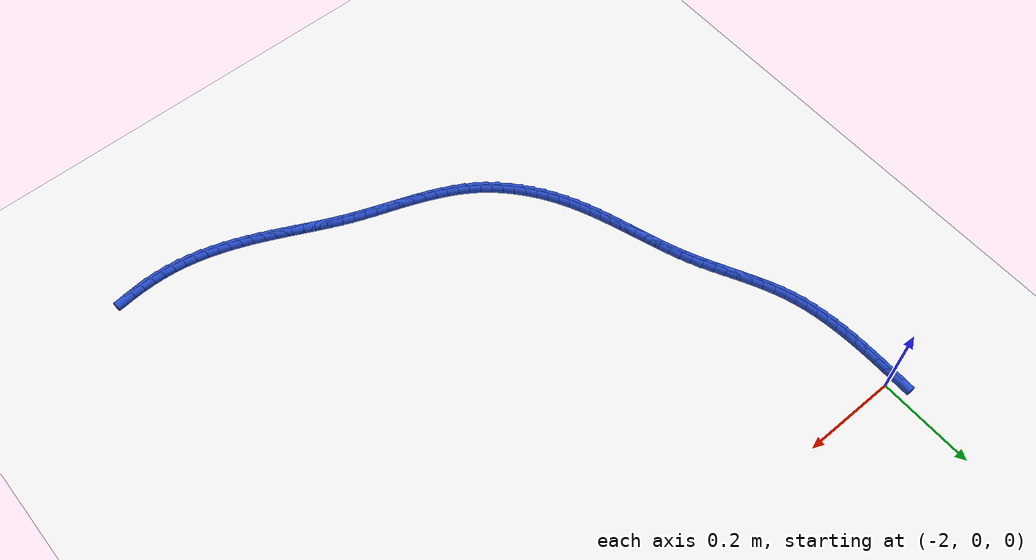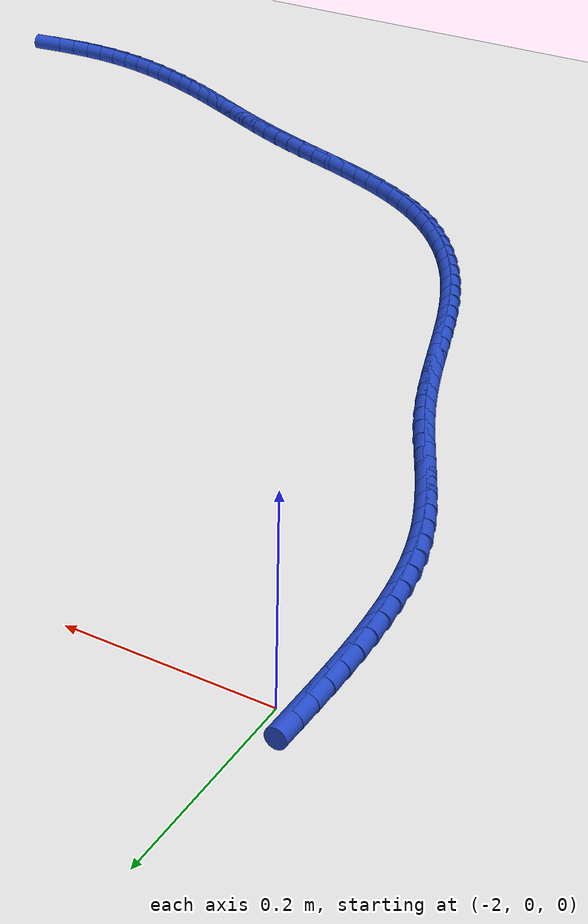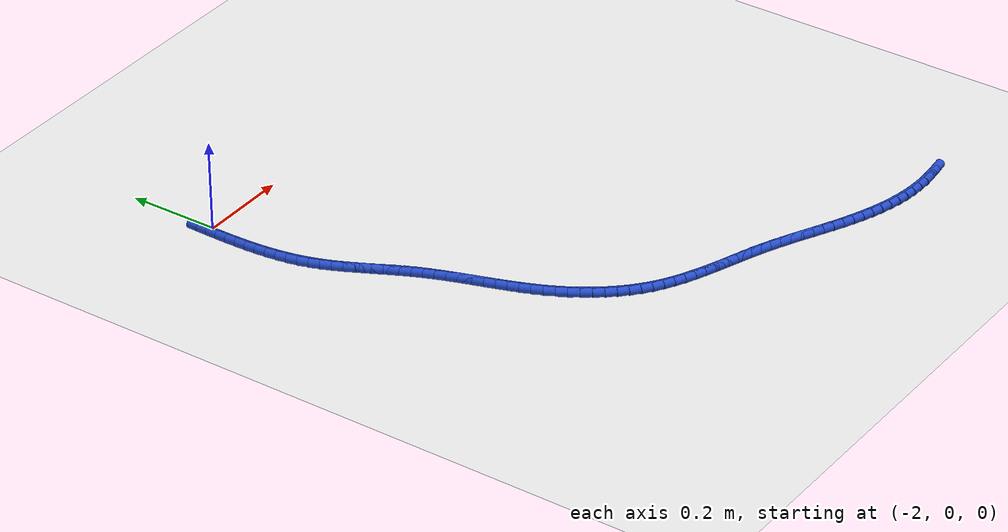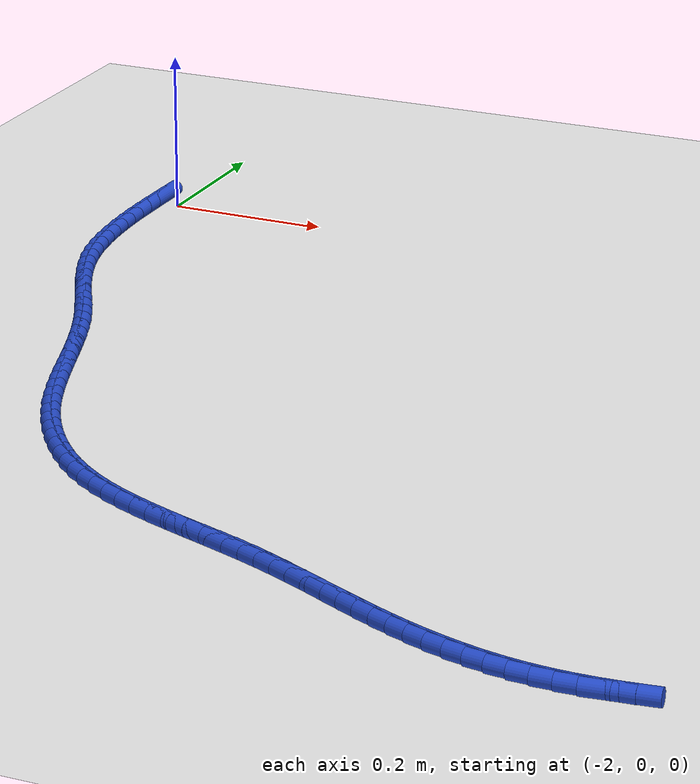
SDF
<sdf version="1.6">
 <world name="default">
  <model name="ground_plane">
   <static>1</static>
   <link name="link">
    <collision name="collision">
     <geometry><plane><normal>0 0 1</normal><size>100 100</size></plane></geometry>
     <surface><friction><ode><mu>100</mu><mu2>50</mu2></ode></friction></surface>
    </collision>
    <visual name="visual">
     <cast_shadows>0</cast_shadows>
     <geometry><plane><normal>0 0 1</normal><size>100 100</size></plane></geometry>
     <material>
      <script><uri>file://media/materials/scripts/gazebo.material</uri><name>Gazebo/WhiteGlow</name></script>
     </material>
    </visual>
   </link>
  </model>
  <model name="line">
   <link name="link_141">
    <pose>-2.023057227948224 0.0009073355299629441 0.01 0 1.57 1.5597617232590624</pose>
    <collision name="collision">
     <geometry><cylinder><radius>0.01</radius><length>0.08</length></cylinder></geometry>
    </collision>
    <visual name="visual">
     <material>
      <script><name>Gazebo/Blue</name><uri>file://media/materials/scripts/gazebo.material</uri></script>
     </material>
     <geometry><cylinder><radius>0.01</radius><length>0.08</length></cylinder></geometry>
    </visual>
   </link>
   <link name="link_142">
    <pose>-2.0233220026584045 -0.023086636042471863 0.01 0 1.57 1.5689341374883188</pose>
    <collision name="collision">
     <geometry><cylinder><radius>0.01</radius><length>0.08</length></cylinder></geometry>
    </collision>
    <visual name="visual">
     <material>
      <script><name>Gazebo/Blue</name><uri>file://media/materials/scripts/gazebo.material</uri></script>
     </material>
     <geometry><cylinder><radius>0.01</radius><length>0.08</length></cylinder></geometry>
    </visual>
   </link>
   <link name="link_143">
    <pose>-2.023366839464035 -0.04716407738772726 0.01 0 1.57 -1.5587827973784363</pose>
    <collision name="collision">
     <geometry><cylinder><radius>0.01</radius><length>0.08</length></cylinder></geometry>
    </collision>
    <visual name="visual">
     <material>
      <script><name>Gazebo/Blue</name><uri>file://media/materials/scripts/gazebo.material</uri></script>
     </material>
     <geometry><cylinder><radius>0.01</radius><length>0.08</length></cylinder></geometry>
    </visual>
   </link>
   <link name="link_144">
    <pose>-2.023077206975355 -0.07127177669743998 0.01 0 1.57 -1.540137844850305</pose>
    <collision name="collision">
     <geometry><cylinder><radius>0.01</radius><length>0.08</length></cylinder></geometry>
    </collision>
    <visual name="visual">
     <material>
      <script><name>Gazebo/Blue</name><uri>file://media/materials/scripts/gazebo.material</uri></script>
     </material>
     <geometry><cylinder><radius>0.01</radius><length>0.08</length></cylinder></geometry>
    </visual>
   </link>
   <link name="link_145">
    <pose>-2.0223385738026076 -0.09535652216324693 0.01 0 1.57 -1.5166119209188074</pose>
    <collision name="collision">
     <geometry><cylinder><radius>0.01</radius><length>0.08</length></cylinder></geometry>
    </collision>
    <visual name="visual">
     <material>
      <script><name>Gazebo/Blue</name><uri>file://media/materials/scripts/gazebo.material</uri></script>
     </material>
     <geometry><cylinder><radius>0.01</radius><length>0.08</length></cylinder></geometry>
    </visual>
   </link>
   <link name="link_146">
    <pose>-2.021036408556032 -0.11936510197678567 0.01 0 1.57 -1.4880587186526688</pose>
    <collision name="collision">
     <geometry><cylinder><radius>0.01</radius><length>0.08</length></cylinder></geometry>
    </collision>
    <visual name="visual">
     <material>
      <script><name>Gazebo/Blue</name><uri>file://media/materials/scripts/gazebo.material</uri></script>
     </material>
     <geometry><cylinder><radius>0.01</radius><length>0.08</length></cylinder></geometry>
    </visual>
   </link>
   <link name="link_147">
    <pose>-2.0190561798458715 -0.14324430432969154 0.01 0 1.57 -1.4543125406291841</pose>
    <collision name="collision">
     <geometry><cylinder><radius>0.01</radius><length>0.08</length></cylinder></geometry>
    </collision>
    <visual name="visual">
     <material>
      <script><name>Gazebo/Blue</name><uri>file://media/materials/scripts/gazebo.material</uri></script>
     </material>
     <geometry><cylinder><radius>0.01</radius><length>0.08</length></cylinder></geometry>
    </visual>
   </link>
   <link name="link_148">
    <pose>-2.016283356282366 -0.1669409174136021 0.01 0 1.57 -1.415208885727363</pose>
    <collision name="collision">
     <geometry><cylinder><radius>0.01</radius><length>0.08</length></cylinder></geometry>
    </collision>
    <visual name="visual">
     <material>
      <script><name>Gazebo/Blue</name><uri>file://media/materials/scripts/gazebo.material</uri></script>
     </material>
     <geometry><cylinder><radius>0.01</radius><length>0.08</length></cylinder></geometry>
    </visual>
   </link>
   <link name="link_149">
    <pose>-2.0126034064757556 -0.19040172942015418 0.01 0 1.57 -1.370611819343016</pose>
    <collision name="collision">
     <geometry><cylinder><radius>0.01</radius><length>0.08</length></cylinder></geometry>
    </collision>
    <visual name="visual">
     <material>
      <script><name>Gazebo/Blue</name><uri>file://media/materials/scripts/gazebo.material</uri></script>
     </material>
     <geometry><cylinder><radius>0.01</radius><length>0.08</length></cylinder></geometry>
    </visual>
   </link>
   <link name="link_150">
    <pose>-2.007901799036283 -0.2135735285409846 0.01 0 1.57 -1.3204489174814513</pose>
    <collision name="collision">
     <geometry><cylinder><radius>0.01</radius><length>0.08</length></cylinder></geometry>
    </collision>
    <visual name="visual">
     <material>
      <script><name>Gazebo/Blue</name><uri>file://media/materials/scripts/gazebo.material</uri></script>
     </material>
     <geometry><cylinder><radius>0.01</radius><length>0.08</length></cylinder></geometry>
    </visual>
   </link>
   <link name="link_151">
    <pose>-2.0020640025741896 -0.23640310296773026 0.01 0 1.57 -1.2648346561743053</pose>
    <collision name="collision">
     <geometry><cylinder><radius>0.01</radius><length>0.08</length></cylinder></geometry>
    </collision>
    <visual name="visual">
     <material>
      <script><name>Gazebo/Blue</name><uri>file://media/materials/scripts/gazebo.material</uri></script>
     </material>
     <geometry><cylinder><radius>0.01</radius><length>0.08</length></cylinder></geometry>
    </visual>
   </link>
   <link name="link_152">
    <pose>-1.9949772776243744 -0.2588379295110594 0.01 0 1.57 -1.2096856034503434</pose>
    <collision name="collision">
     <geometry><cylinder><radius>0.01</radius><length>0.08</length></cylinder></geometry>
    </collision>
    <visual name="visual">
     <material>
      <script><name>Gazebo/Blue</name><uri>file://media/materials/scripts/gazebo.material</uri></script>
     </material>
     <geometry><cylinder><radius>0.01</radius><length>0.08</length></cylinder></geometry>
    </visual>
   </link>
   <link name="link_153">
    <pose>-1.9866549138830387 -0.2808739167494265 0.01 0 1.57 -1.1646392743769012</pose>
    <collision name="collision">
     <geometry><cylinder><radius>0.01</radius><length>0.08</length></cylinder></geometry>
    </collision>
    <visual name="visual">
     <material>
      <script><name>Gazebo/Blue</name><uri>file://media/materials/scripts/gazebo.material</uri></script>
     </material>
     <geometry><cylinder><radius>0.01</radius><length>0.08</length></cylinder></geometry>
    </visual>
   </link>
   <link name="link_154">
    <pose>-1.9773170080211586 -0.302586447148723 0.01 0 1.57 -1.1305817391148092</pose>
    <collision name="collision">
     <geometry><cylinder><radius>0.01</radius><length>0.08</length></cylinder></geometry>
    </collision>
    <visual name="visual">
     <material>
      <script><name>Gazebo/Blue</name><uri>file://media/materials/scripts/gazebo.material</uri></script>
     </material>
     <geometry><cylinder><radius>0.01</radius><length>0.08</length></cylinder></geometry>
    </visual>
   </link>
   <link name="link_155">
    <pose>-1.9672028570755478 -0.3240582816866878 0.01 0 1.57 -1.107368348257664</pose>
    <collision name="collision">
     <geometry><cylinder><radius>0.01</radius><length>0.08</length></cylinder></geometry>
    </collision>
    <visual name="visual">
     <material>
      <script><name>Gazebo/Blue</name><uri>file://media/materials/scripts/gazebo.material</uri></script>
     </material>
     <geometry><cylinder><radius>0.01</radius><length>0.08</length></cylinder></geometry>
    </visual>
   </link>
   <link name="link_156">
    <pose>-1.956551758083023 -0.3453721813410582 0.01 0 1.57 -1.094818796255862</pose>
    <collision name="collision">
     <geometry><cylinder><radius>0.01</radius><length>0.08</length></cylinder></geometry>
    </collision>
    <visual name="visual">
     <material>
      <script><name>Gazebo/Blue</name><uri>file://media/materials/scripts/gazebo.material</uri></script>
     </material>
     <geometry><cylinder><radius>0.01</radius><length>0.08</length></cylinder></geometry>
    </visual>
   </link>
   <link name="link_157">
    <pose>-1.9456030080803994 -0.36661090708957356 0.01 0 1.57 -1.0927964507718904</pose>
    <collision name="collision">
     <geometry><cylinder><radius>0.01</radius><length>0.08</length></cylinder></geometry>
    </collision>
    <visual name="visual">
     <material>
      <script><name>Gazebo/Blue</name><uri>file://media/materials/scripts/gazebo.material</uri></script>
     </material>
     <geometry><cylinder><radius>0.01</radius><length>0.08</length></cylinder></geometry>
    </visual>
   </link>
   <link name="link_158">
    <pose>-1.9345959041044922 -0.3878572199099724 0.01 0 1.57 -1.1012485244442995</pose>
    <collision name="collision">
     <geometry><cylinder><radius>0.01</radius><length>0.08</length></cylinder></geometry>
    </collision>
    <visual name="visual">
     <material>
      <script><name>Gazebo/Blue</name><uri>file://media/materials/scripts/gazebo.material</uri></script>
     </material>
     <geometry><cylinder><radius>0.01</radius><length>0.08</length></cylinder></geometry>
    </visual>
   </link>
   <link name="link_159">
    <pose>-1.9237697431921164 -0.40919388077999325 0.01 0 1.57 -1.1202115639963244</pose>
    <collision name="collision">
     <geometry><cylinder><radius>0.01</radius><length>0.08</length></cylinder></geometry>
    </collision>
    <visual name="visual">
     <material>
      <script><name>Gazebo/Blue</name><uri>file://media/materials/scripts/gazebo.material</uri></script>
     </material>
     <geometry><cylinder><radius>0.01</radius><length>0.08</length></cylinder></geometry>
    </visual>
   </link>
   <link name="link_160">
    <pose>-1.9133638223800882 -0.4307036506773747 0.01 0 1.57 -1.1496451820584055</pose>
    <collision name="collision">
     <geometry><cylinder><radius>0.01</radius><length>0.08</length></cylinder></geometry>
    </collision>
    <visual name="visual">
     <material>
      <script><name>Gazebo/Blue</name><uri>file://media/materials/scripts/gazebo.material</uri></script>
     </material>
     <geometry><cylinder><radius>0.01</radius><length>0.08</length></cylinder></geometry>
    </visual>
   </link>
   <link name="link_161">
    <pose>-1.9036143242709638 -0.45246815939183466 0.01 0 1.57 -1.182765970545123</pose>
    <collision name="collision">
     <geometry><cylinder><radius>0.01</radius><length>0.08</length></cylinder></geometry>
    </collision>
    <visual name="visual">
     <material>
      <script><name>Gazebo/Blue</name><uri>file://media/materials/scripts/gazebo.material</uri></script>
     </material>
     <geometry><cylinder><radius>0.01</radius><length>0.08</length></cylinder></geometry>
    </visual>
   </link>
   <link name="link_162">
    <pose>-1.8946033677618028 -0.47451307951393557 0.01 0 1.57 -1.2096464520930241</pose>
    <collision name="collision">
     <geometry><cylinder><radius>0.01</radius><length>0.08</length></cylinder></geometry>
    </collision>
    <visual name="visual">
     <material>
      <script><name>Gazebo/Blue</name><uri>file://media/materials/scripts/gazebo.material</uri></script>
     </material>
     <geometry><cylinder><radius>0.01</radius><length>0.08</length></cylinder></geometry>
    </visual>
   </link>
   <link name="link_163">
    <pose>-1.8861914371884818 -0.496783584147096 0.01 0 1.57 -1.2294690854985713</pose>
    <collision name="collision">
     <geometry><cylinder><radius>0.01</radius><length>0.08</length></cylinder></geometry>
    </collision>
    <visual name="visual">
     <material>
      <script><name>Gazebo/Blue</name><uri>file://media/materials/scripts/gazebo.material</uri></script>
     </material>
     <geometry><cylinder><radius>0.01</radius><length>0.08</length></cylinder></geometry>
    </visual>
   </link>
   <link name="link_164">
    <pose>-1.8782218255041196 -0.5192186023437725 0.01 0 1.57 -1.2422259189413765</pose>
    <collision name="collision">
     <geometry><cylinder><radius>0.01</radius><length>0.08</length></cylinder></geometry>
    </collision>
    <visual name="visual">
     <material>
      <script><name>Gazebo/Blue</name><uri>file://media/materials/scripts/gazebo.material</uri></script>
     </material>
     <geometry><cylinder><radius>0.01</radius><length>0.08</length></cylinder></geometry>
    </visual>
   </link>
   <link name="link_165">
    <pose>-1.8705378256618372 -0.5417570631564199 0.01 0 1.57 -1.2479241877370781</pose>
    <collision name="collision">
     <geometry><cylinder><radius>0.01</radius><length>0.08</length></cylinder></geometry>
    </collision>
    <visual name="visual">
     <material>
      <script><name>Gazebo/Blue</name><uri>file://media/materials/scripts/gazebo.material</uri></script>
     </material>
     <geometry><cylinder><radius>0.01</radius><length>0.08</length></cylinder></geometry>
    </visual>
   </link>
   <link name="link_166">
    <pose>-1.8629827306147546 -0.5643378956374947 0.01 0 1.57 -1.2465672277594648</pose>
    <collision name="collision">
     <geometry><cylinder><radius>0.01</radius><length>0.08</length></cylinder></geometry>
    </collision>
    <visual name="visual">
     <material>
      <script><name>Gazebo/Blue</name><uri>file://media/materials/scripts/gazebo.material</uri></script>
     </material>
     <geometry><cylinder><radius>0.01</radius><length>0.08</length></cylinder></geometry>
    </visual>
   </link>
   <link name="link_167">
    <pose>-1.8553998333159918 -0.5869000288394531 0.01 0 1.57 -1.2381459539160442</pose>
    <collision name="collision">
     <geometry><cylinder><radius>0.01</radius><length>0.08</length></cylinder></geometry>
    </collision>
    <visual name="visual">
     <material>
      <script><name>Gazebo/Blue</name><uri>file://media/materials/scripts/gazebo.material</uri></script>
     </material>
     <geometry><cylinder><radius>0.01</radius><length>0.08</length></cylinder></geometry>
    </visual>
   </link>
   <link name="link_168">
    <pose>-1.8476324267186683 -0.6093823918147508 0.01 0 1.57 -1.2226408523611212</pose>
    <collision name="collision">
     <geometry><cylinder><radius>0.01</radius><length>0.08</length></cylinder></geometry>
    </collision>
    <visual name="visual">
     <material>
      <script><name>Gazebo/Blue</name><uri>file://media/materials/scripts/gazebo.material</uri></script>
     </material>
     <geometry><cylinder><radius>0.01</radius><length>0.08</length></cylinder></geometry>
    </visual>
   </link>
   <link name="link_169">
    <pose>-1.839523803775905 -0.6317239136158441 0.01 0 1.57 -1.20003459129821</pose>
    <collision name="collision">
     <geometry><cylinder><radius>0.01</radius><length>0.08</length></cylinder></geometry>
    </collision>
    <visual name="visual">
     <material>
      <script><name>Gazebo/Blue</name><uri>file://media/materials/scripts/gazebo.material</uri></script>
     </material>
     <geometry><cylinder><radius>0.01</radius><length>0.08</length></cylinder></geometry>
    </visual>
   </link>
   <link name="link_170">
    <pose>-1.830917257440822 -0.6538635232951893 0.01 0 1.57 -1.1703354355660025</pose>
    <collision name="collision">
     <geometry><cylinder><radius>0.01</radius><length>0.08</length></cylinder></geometry>
    </collision>
    <visual name="visual">
     <material>
      <script><name>Gazebo/Blue</name><uri>file://media/materials/scripts/gazebo.material</uri></script>
     </material>
     <geometry><cylinder><radius>0.01</radius><length>0.08</length></cylinder></geometry>
    </visual>
   </link>
   <link name="link_171">
    <pose>-1.821656080666539 -0.6757401499052414 0.01 0 1.57 -1.1336112496209738</pose>
    <collision name="collision">
     <geometry><cylinder><radius>0.01</radius><length>0.08</length></cylinder></geometry>
    </collision>
    <visual name="visual">
     <material>
      <script><name>Gazebo/Blue</name><uri>file://media/materials/scripts/gazebo.material</uri></script>
     </material>
     <geometry><cylinder><radius>0.01</radius><length>0.08</length></cylinder></geometry>
    </visual>
   </link>
   <link name="link_172">
    <pose>-1.811583566406176 -0.6972927224984572 0.01 0 1.57 -1.0900326210460178</pose>
    <collision name="collision">
     <geometry><cylinder><radius>0.01</radius><length>0.08</length></cylinder></geometry>
    </collision>
    <visual name="visual">
     <material>
      <script><name>Gazebo/Blue</name><uri>file://media/materials/scripts/gazebo.material</uri></script>
     </material>
     <geometry><cylinder><radius>0.01</radius><length>0.08</length></cylinder></geometry>
    </visual>
   </link>
   <link name="link_173">
    <pose>-1.8005430084495002 -0.7184601697778187 0.01 0 1.57 -1.0408392244365492</pose>
    <collision name="collision">
     <geometry><cylinder><radius>0.01</radius><length>0.08</length></cylinder></geometry>
    </collision>
    <visual name="visual">
     <material>
      <script><name>Gazebo/Blue</name><uri>file://media/materials/scripts/gazebo.material</uri></script>
     </material>
     <geometry><cylinder><radius>0.01</radius><length>0.08</length></cylinder></geometry>
    </visual>
   </link>
   <link name="link_174">
    <pose>-1.7884115536418976 -0.7391672797446746 0.01 0 1.57 -0.9894226303605738</pose>
    <collision name="collision">
     <geometry><cylinder><radius>0.01</radius><length>0.08</length></cylinder></geometry>
    </collision>
    <visual name="visual">
     <material>
      <script><name>Gazebo/Blue</name><uri>file://media/materials/scripts/gazebo.material</uri></script>
     </material>
     <geometry><cylinder><radius>0.01</radius><length>0.08</length></cylinder></geometry>
    </visual>
   </link>
   <link name="link_175">
    <pose>-1.7751901172084268 -0.7592871413233979 0.01 0 1.57 -0.9360373159760991</pose>
    <collision name="collision">
     <geometry><cylinder><radius>0.01</radius><length>0.08</length></cylinder></geometry>
    </collision>
    <visual name="visual">
     <material>
      <script><name>Gazebo/Blue</name><uri>file://media/materials/scripts/gazebo.material</uri></script>
     </material>
     <geometry><cylinder><radius>0.01</radius><length>0.08</length></cylinder></geometry>
    </visual>
   </link>
   <link name="link_176">
    <pose>-1.7609078918911603 -0.7786810316853696 0.01 0 1.57 -0.8801223480907423</pose>
    <collision name="collision">
     <geometry><cylinder><radius>0.01</radius><length>0.08</length></cylinder></geometry>
    </collision>
    <visual name="visual">
     <material>
      <script><name>Gazebo/Blue</name><uri>file://media/materials/scripts/gazebo.material</uri></script>
     </material>
     <geometry><cylinder><radius>0.01</radius><length>0.08</length></cylinder></geometry>
    </visual>
   </link>
   <link name="link_177">
    <pose>-1.7455940704321704 -0.7972102280019696 0.01 0 1.57 -0.8211241778846058</pose>
    <collision name="collision">
     <geometry><cylinder><radius>0.01</radius><length>0.08</length></cylinder></geometry>
    </collision>
    <visual name="visual">
     <material>
      <script><name>Gazebo/Blue</name><uri>file://media/materials/scripts/gazebo.material</uri></script>
     </material>
     <geometry><cylinder><radius>0.01</radius><length>0.08</length></cylinder></geometry>
    </visual>
   </link>
   <link name="link_178">
    <pose>-1.729277845573531 -0.8147360074445791 0.01 0 1.57 -0.7585049441720089</pose>
    <collision name="collision">
     <geometry><cylinder><radius>0.01</radius><length>0.08</length></cylinder></geometry>
    </collision>
    <visual name="visual">
     <material>
      <script><name>Gazebo/Blue</name><uri>file://media/materials/scripts/gazebo.material</uri></script>
     </material>
     <geometry><cylinder><radius>0.01</radius><length>0.08</length></cylinder></geometry>
    </visual>
   </link>
   <link name="link_179">
    <pose>-1.711988410057314 -0.8311196471845782 0.01 0 1.57 -0.691760673243821</pose>
    <collision name="collision">
     <geometry><cylinder><radius>0.01</radius><length>0.08</length></cylinder></geometry>
    </collision>
    <visual name="visual">
     <material>
      <script><name>Gazebo/Blue</name><uri>file://media/materials/scripts/gazebo.material</uri></script>
     </material>
     <geometry><cylinder><radius>0.01</radius><length>0.08</length></cylinder></geometry>
    </visual>
   </link>
   <link name="link_180">
    <pose>-1.693754956625593 -0.846222424393348 0.01 0 1.57 -0.6218823035949613</pose>
    <collision name="collision">
     <geometry><cylinder><radius>0.01</radius><length>0.08</length></cylinder></geometry>
    </collision>
    <visual name="visual">
     <material>
      <script><name>Gazebo/Blue</name><uri>file://media/materials/scripts/gazebo.material</uri></script>
     </material>
     <geometry><cylinder><radius>0.01</radius><length>0.08</length></cylinder></geometry>
    </visual>
   </link>
   <link name="link_181">
    <pose>-1.674615573224815 -0.8599406632596466 0.01 0 1.57 -0.5571971062789389</pose>
    <collision name="collision">
     <geometry><cylinder><radius>0.01</radius><length>0.08</length></cylinder></geometry>
    </collision>
    <visual name="visual">
     <material>
      <script><name>Gazebo/Blue</name><uri>file://media/materials/scripts/gazebo.material</uri></script>
     </material>
     <geometry><cylinder><radius>0.01</radius><length>0.08</length></cylinder></geometry>
    </visual>
   </link>
   <link name="link_182">
    <pose>-1.6546599608019548 -0.8723740426844906 0.01 0 1.57 -0.5012217318772823</pose>
    <collision name="collision">
     <geometry><cylinder><radius>0.01</radius><length>0.08</length></cylinder></geometry>
    </collision>
    <visual name="visual">
     <material>
      <script><name>Gazebo/Blue</name><uri>file://media/materials/scripts/gazebo.material</uri></script>
     </material>
     <geometry><cylinder><radius>0.01</radius><length>0.08</length></cylinder></geometry>
    </visual>
   </link>
   <link name="link_183">
    <pose>-1.6339963896678524 -0.8836954046791159 0.01 0 1.57 -0.45422281316777763</pose>
    <collision name="collision">
     <geometry><cylinder><radius>0.01</radius><length>0.08</length></cylinder></geometry>
    </collision>
    <visual name="visual">
     <material>
      <script><name>Gazebo/Blue</name><uri>file://media/materials/scripts/gazebo.material</uri></script>
     </material>
     <geometry><cylinder><radius>0.01</radius><length>0.08</length></cylinder></geometry>
    </visual>
   </link>
   <link name="link_184">
    <pose>-1.612733154617853 -0.8940776877234631 0.01 0 1.57 -0.4162046039074461</pose>
    <collision name="collision">
     <geometry><cylinder><radius>0.01</radius><length>0.08</length></cylinder></geometry>
    </collision>
    <visual name="visual">
     <material>
      <script><name>Gazebo/Blue</name><uri>file://media/materials/scripts/gazebo.material</uri></script>
     </material>
     <geometry><cylinder><radius>0.01</radius><length>0.08</length></cylinder></geometry>
    </visual>
   </link>
   <link name="link_185">
    <pose>-1.5909785504472997 -0.9036938302974716 0.01 0 1.57 -0.38702627278164625</pose>
    <collision name="collision">
     <geometry><cylinder><radius>0.01</radius><length>0.08</length></cylinder></geometry>
    </collision>
    <visual name="visual">
     <material>
      <script><name>Gazebo/Blue</name><uri>file://media/materials/scripts/gazebo.material</uri></script>
     </material>
     <geometry><cylinder><radius>0.01</radius><length>0.08</length></cylinder></geometry>
    </visual>
   </link>
   <link name="link_186">
    <pose>-1.5688408719515388 -0.9127167708810819 0.01 0 1.57 -0.36649349614064214</pose>
    <collision name="collision">
     <geometry><cylinder><radius>0.01</radius><length>0.08</length></cylinder></geometry>
    </collision>
    <visual name="visual">
     <material>
      <script><name>Gazebo/Blue</name><uri>file://media/materials/scripts/gazebo.material</uri></script>
     </material>
     <geometry><cylinder><radius>0.01</radius><length>0.08</length></cylinder></geometry>
    </visual>
   </link>
   <link name="link_187">
    <pose>-1.5464284139259137 -0.921319447954234 0.01 0 1.57 -0.3544244536984802</pose>
    <collision name="collision">
     <geometry><cylinder><radius>0.01</radius><length>0.08</length></cylinder></geometry>
    </collision>
    <visual name="visual">
     <material>
      <script><name>Gazebo/Blue</name><uri>file://media/materials/scripts/gazebo.material</uri></script>
     </material>
     <geometry><cylinder><radius>0.01</radius><length>0.08</length></cylinder></geometry>
    </visual>
   </link>
   <link name="link_188">
    <pose>-1.5238494711657695 -0.9296747999968683 0.01 0 1.57 -0.35069240324865003</pose>
    <collision name="collision">
     <geometry><cylinder><radius>0.01</radius><length>0.08</length></cylinder></geometry>
    </collision>
    <visual name="visual">
     <material>
      <script><name>Gazebo/Blue</name><uri>file://media/materials/scripts/gazebo.material</uri></script>
     </material>
     <geometry><cylinder><radius>0.01</radius><length>0.08</length></cylinder></geometry>
    </visual>
   </link>
   <link name="link_189">
    <pose>-1.5012123384664513 -0.9379557654889243 0.01 0 1.57 -0.35524871359140237</pose>
    <collision name="collision">
     <geometry><cylinder><radius>0.01</radius><length>0.08</length></cylinder></geometry>
    </collision>
    <visual name="visual">
     <material>
      <script><name>Gazebo/Blue</name><uri>file://media/materials/scripts/gazebo.material</uri></script>
     </material>
     <geometry><cylinder><radius>0.01</radius><length>0.08</length></cylinder></geometry>
    </visual>
   </link>
   <link name="link_190">
    <pose>-1.4786253106233023 -0.946335282910343 0.01 0 1.57 -0.36812943341828874</pose>
    <collision name="collision">
     <geometry><cylinder><radius>0.01</radius><length>0.08</length></cylinder></geometry>
    </collision>
    <visual name="visual">
     <material>
      <script><name>Gazebo/Blue</name><uri>file://media/materials/scripts/gazebo.material</uri></script>
     </material>
     <geometry><cylinder><radius>0.01</radius><length>0.08</length></cylinder></geometry>
    </visual>
   </link>
   <link name="link_191">
    <pose>-1.4561966824316692 -0.9549862907410633 0.01 0 1.57 -0.38942835773457635</pose>
    <collision name="collision">
     <geometry><cylinder><radius>0.01</radius><length>0.08</length></cylinder></geometry>
    </collision>
    <visual name="visual">
     <material>
      <script><name>Gazebo/Blue</name><uri>file://media/materials/scripts/gazebo.material</uri></script>
     </material>
     <geometry><cylinder><radius>0.01</radius><length>0.08</length></cylinder></geometry>
    </visual>
   </link>
   <link name="link_192">
    <pose>-1.4340345193426869 -0.964081350854321 0.01 0 1.57 -0.4151362166074599</pose>
    <collision name="collision">
     <geometry><cylinder><radius>0.01</radius><length>0.08</length></cylinder></geometry>
    </collision>
    <visual name="visual">
     <material>
      <script><name>Gazebo/Blue</name><uri>file://media/materials/scripts/gazebo.material</uri></script>
     </material>
     <geometry><cylinder><radius>0.01</radius><length>0.08</length></cylinder></geometry>
    </visual>
   </link>
   <link name="link_193">
    <pose>-1.412194677228164 -0.9737072916412687 0.01 0 1.57 -0.43581779895442285</pose>
    <collision name="collision">
     <geometry><cylinder><radius>0.01</radius><length>0.08</length></cylinder></geometry>
    </collision>
    <visual name="visual">
     <material>
      <script><name>Gazebo/Blue</name><uri>file://media/materials/scripts/gazebo.material</uri></script>
     </material>
     <geometry><cylinder><radius>0.01</radius><length>0.08</length></cylinder></geometry>
    </visual>
   </link>
   <link name="link_194">
    <pose>-1.3906147118081291 -0.9837566805150177 0.01 0 1.57 -0.4500697557422869</pose>
    <collision name="collision">
     <geometry><cylinder><radius>0.01</radius><length>0.08</length></cylinder></geometry>
    </collision>
    <visual name="visual">
     <material>
      <script><name>Gazebo/Blue</name><uri>file://media/materials/scripts/gazebo.material</uri></script>
     </material>
     <geometry><cylinder><radius>0.01</radius><length>0.08</length></cylinder></geometry>
    </visual>
   </link>
   <link name="link_195">
    <pose>-1.3692158871030875 -0.9940953322477433 0.01 0 1.57 -0.4578277235277806</pose>
    <collision name="collision">
     <geometry><cylinder><radius>0.01</radius><length>0.08</length></cylinder></geometry>
    </collision>
    <visual name="visual">
     <material>
      <script><name>Gazebo/Blue</name><uri>file://media/materials/scripts/gazebo.material</uri></script>
     </material>
     <geometry><cylinder><radius>0.01</radius><length>0.08</length></cylinder></geometry>
    </visual>
   </link>
   <link name="link_196">
    <pose>-1.3479194671335444 -1.0045890616116202 0.01 0 1.57 -0.459058362870931</pose>
    <collision name="collision">
     <geometry><cylinder><radius>0.01</radius><length>0.08</length></cylinder></geometry>
    </collision>
    <visual name="visual">
     <material>
      <script><name>Gazebo/Blue</name><uri>file://media/materials/scripts/gazebo.material</uri></script>
     </material>
     <geometry><cylinder><radius>0.01</radius><length>0.08</length></cylinder></geometry>
    </visual>
   </link>
   <link name="link_197">
    <pose>-1.3266467159200053 -1.015103683378824 0.01 0 1.57 -0.4537498812603739</pose>
    <collision name="collision">
     <geometry><cylinder><radius>0.01</radius><length>0.08</length></cylinder></geometry>
    </collision>
    <visual name="visual">
     <material>
      <script><name>Gazebo/Blue</name><uri>file://media/materials/scripts/gazebo.material</uri></script>
     </material>
     <geometry><cylinder><radius>0.01</radius><length>0.08</length></cylinder></geometry>
    </visual>
   </link>
   <link name="link_198">
    <pose>-1.3053188974829748 -1.0255050123215292 0.01 0 1.57 -0.44191058420970486</pose>
    <collision name="collision">
     <geometry><cylinder><radius>0.01</radius><length>0.08</length></cylinder></geometry>
    </collision>
    <visual name="visual">
     <material>
      <script><name>Gazebo/Blue</name><uri>file://media/materials/scripts/gazebo.material</uri></script>
     </material>
     <geometry><cylinder><radius>0.01</radius><length>0.08</length></cylinder></geometry>
    </visual>
   </link>
   <link name="link_199">
    <pose>-1.2838572758429585 -1.0356588632119121 0.01 0 1.57 -0.4235756004525199</pose>
    <collision name="collision">
     <geometry><cylinder><radius>0.01</radius><length>0.08</length></cylinder></geometry>
    </collision>
    <visual name="visual">
     <material>
      <script><name>Gazebo/Blue</name><uri>file://media/materials/scripts/gazebo.material</uri></script>
     </material>
     <geometry><cylinder><radius>0.01</radius><length>0.08</length></cylinder></geometry>
    </visual>
   </link>
   <link name="link_200">
    <pose>-1.2621831150204619 -1.045431050822146 0.01 0 1.57 -0.3988247344839099</pose>
    <collision name="collision">
     <geometry><cylinder><radius>0.01</radius><length>0.08</length></cylinder></geometry>
    </collision>
    <visual name="visual">
     <material>
      <script><name>Gazebo/Blue</name><uri>file://media/materials/scripts/gazebo.material</uri></script>
     </material>
     <geometry><cylinder><radius>0.01</radius><length>0.08</length></cylinder></geometry>
    </visual>
   </link>
   <link name="link_201">
    <pose>-1.2402178575110057 -1.054687398295066 0.01 0 1.57 -0.36836356330071574</pose>
    <collision name="collision">
     <geometry><cylinder><radius>0.01</radius><length>0.08</length></cylinder></geometry>
    </collision>
    <visual name="visual">
     <material>
      <script><name>Gazebo/Blue</name><uri>file://media/materials/scripts/gazebo.material</uri></script>
     </material>
     <geometry><cylinder><radius>0.01</radius><length>0.08</length></cylinder></geometry>
    </visual>
   </link>
   <link name="link_202">
    <pose>-1.2179165288096059 -1.0632953038501676 0.01 0 1.57 -0.3333999100980176</pose>
    <collision name="collision">
     <geometry><cylinder><radius>0.01</radius><length>0.08</length></cylinder></geometry>
    </collision>
    <visual name="visual">
     <material>
      <script><name>Gazebo/Blue</name><uri>file://media/materials/scripts/gazebo.material</uri></script>
     </material>
     <geometry><cylinder><radius>0.01</radius><length>0.08</length></cylinder></geometry>
    </visual>
   </link>
   <link name="link_203">
    <pose>-1.1953070940714694 -1.0711255866508267 0.01 0 1.57 -0.2938579319037941</pose>
    <collision name="collision">
     <geometry><cylinder><radius>0.01</radius><length>0.08</length></cylinder></geometry>
    </collision>
    <visual name="visual">
     <material>
      <script><name>Gazebo/Blue</name><uri>file://media/materials/scripts/gazebo.material</uri></script>
     </material>
     <geometry><cylinder><radius>0.01</radius><length>0.08</length></cylinder></geometry>
    </visual>
   </link>
   <link name="link_204">
    <pose>-1.1724270866692885 -1.0780495146195004 0.01 0 1.57 -0.2494764253540521</pose>
    <collision name="collision">
     <geometry><cylinder><radius>0.01</radius><length>0.08</length></cylinder></geometry>
    </collision>
    <visual name="visual">
     <material>
      <script><name>Gazebo/Blue</name><uri>file://media/materials/scripts/gazebo.material</uri></script>
     </material>
     <geometry><cylinder><radius>0.01</radius><length>0.08</length></cylinder></geometry>
    </visual>
   </link>
   <link name="link_205">
    <pose>-1.1493140399757547 -1.0839383556786464 0.01 0 1.57 -0.20000595657491171</pose>
    <collision name="collision">
     <geometry><cylinder><radius>0.01</radius><length>0.08</length></cylinder></geometry>
    </collision>
    <visual name="visual">
     <material>
      <script><name>Gazebo/Blue</name><uri>file://media/materials/scripts/gazebo.material</uri></script>
     </material>
     <geometry><cylinder><radius>0.01</radius><length>0.08</length></cylinder></geometry>
    </visual>
   </link>
   <link name="link_206">
    <pose>-1.1260054873635597 -1.0886633777507233 0.01 0 1.57 -0.14524097827650215</pose>
    <collision name="collision">
     <geometry><cylinder><radius>0.01</radius><length>0.08</length></cylinder></geometry>
    </collision>
    <visual name="visual">
     <material>
      <script><name>Gazebo/Blue</name><uri>file://media/materials/scripts/gazebo.material</uri></script>
     </material>
     <geometry><cylinder><radius>0.01</radius><length>0.08</length></cylinder></geometry>
    </visual>
   </link>
   <link name="link_207">
    <pose>-1.1025389622053956 -1.092095848758189 0.01 0 1.57 -0.08647839265934572</pose>
    <collision name="collision">
     <geometry><cylinder><radius>0.01</radius><length>0.08</length></cylinder></geometry>
    </collision>
    <visual name="visual">
     <material>
      <script><name>Gazebo/Blue</name><uri>file://media/materials/scripts/gazebo.material</uri></script>
     </material>
     <geometry><cylinder><radius>0.01</radius><length>0.08</length></cylinder></geometry>
    </visual>
   </link>
   <link name="link_208">
    <pose>-1.0789508015889362 -1.0941408152866627 0.01 0 1.57 -0.030155944388148198</pose>
    <collision name="collision">
     <geometry><cylinder><radius>0.01</radius><length>0.08</length></cylinder></geometry>
    </collision>
    <visual name="visual">
     <material>
      <script><name>Gazebo/Blue</name><uri>file://media/materials/scripts/gazebo.material</uri></script>
     </material>
     <geometry><cylinder><radius>0.01</radius><length>0.08</length></cylinder></geometry>
    </visual>
   </link>
   <link name="link_209">
    <pose>-1.0552719677656617 -1.0948550894115094 0.01 0 1.57 0.02177416661352474</pose>
    <collision name="collision">
     <geometry><cylinder><radius>0.01</radius><length>0.08</length></cylinder></geometry>
    </collision>
    <visual name="visual">
     <material>
      <script><name>Gazebo/Blue</name><uri>file://media/materials/scripts/gazebo.material</uri></script>
     </material>
     <geometry><cylinder><radius>0.01</radius><length>0.08</length></cylinder></geometry>
    </visual>
   </link>
   <link name="link_210">
    <pose>-1.0315319141275 -1.0943380878196407 0.01 0 1.57 0.06925097680397395</pose>
    <collision name="collision">
     <geometry><cylinder><radius>0.01</radius><length>0.08</length></cylinder></geometry>
    </collision>
    <visual name="visual">
     <material>
      <script><name>Gazebo/Blue</name><uri>file://media/materials/scripts/gazebo.material</uri></script>
     </material>
     <geometry><cylinder><radius>0.01</radius><length>0.08</length></cylinder></geometry>
    </visual>
   </link>
   <link name="link_211">
    <pose>-1.0077600939883038 -1.0926892294026171 0.01 0 1.57 0.11230751420961994</pose>
    <collision name="collision">
     <geometry><cylinder><radius>0.01</radius><length>0.08</length></cylinder></geometry>
    </collision>
    <visual name="visual">
     <material>
      <script><name>Gazebo/Blue</name><uri>file://media/materials/scripts/gazebo.material</uri></script>
     </material>
     <geometry><cylinder><radius>0.01</radius><length>0.08</length></cylinder></geometry>
    </visual>
   </link>
  </model>
 </world>
</sdf>
